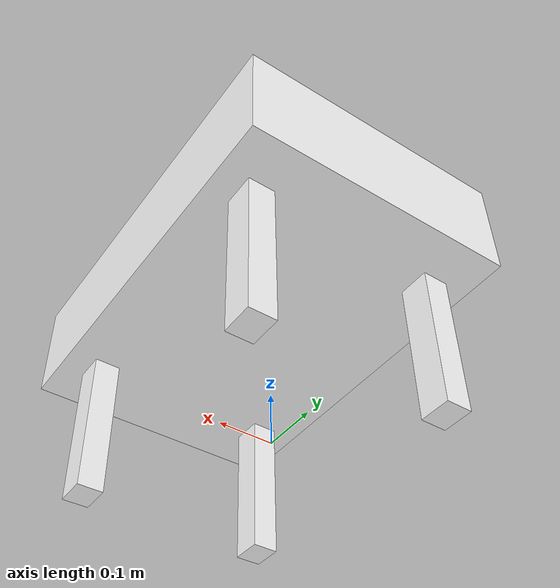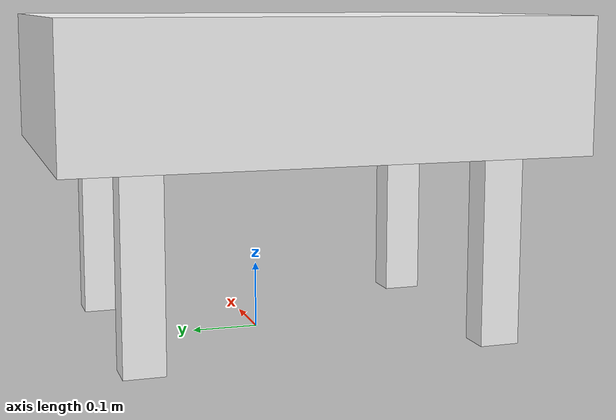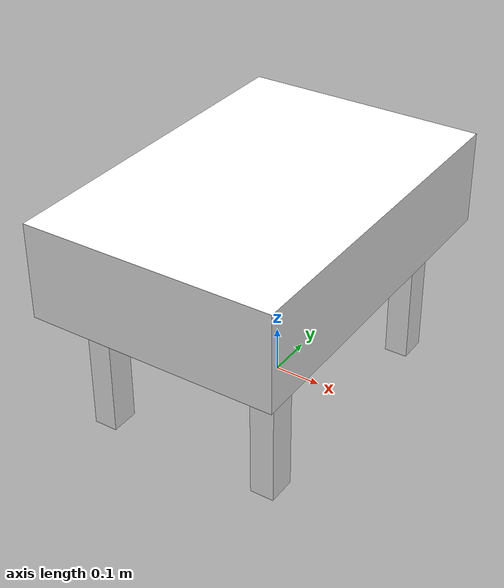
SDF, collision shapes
<?xml version="1.0" ?>
<sdf version="1.5">
  <model name="table_marble">
    <static>true</static>
    <pose>0 0 0.324 0 0 0</pose>
    <link name="link">
      <!-- tabletop + apron: world z 0.28..0.48, far above the robot -->
      <collision name="collision_top">
        <pose>0 -0.05 0.06 0 0 0</pose>
        <geometry><box><size>0.52 0.76 0.20</size></box></geometry>
      </collision>
      <!-- four legs, measured from the mesh: local x +/-0.185, y -0.315 / +0.215,
           floor to apron -->
      <collision name="collision_leg_1">
        <pose>0.185 -0.315 -0.182 0 0 0</pose>
        <geometry><box><size>0.05 0.06 0.284</size></box></geometry>
      </collision>
      <collision name="collision_leg_2">
        <pose>-0.185 -0.315 -0.182 0 0 0</pose>
        <geometry><box><size>0.05 0.06 0.284</size></box></geometry>
      </collision>
      <collision name="collision_leg_3">
        <pose>0.185 0.215 -0.182 0 0 0</pose>
        <geometry><box><size>0.05 0.06 0.284</size></box></geometry>
      </collision>
      <collision name="collision_leg_4">
        <pose>-0.185 0.215 -0.182 0 0 0</pose>
        <geometry><box><size>0.05 0.06 0.284</size></box></geometry>
      </collision>
      <visual name="visual">
        <geometry>
          <mesh>
            <uri>meshes/table_lightmap.dae</uri>
            <scale>0.05 0.1 0.125</scale>
          </mesh>
        </geometry>
        <material>
          <pbr>
            <metal>
              <albedo_map>textures/marble.png</albedo_map>
            </metal>
          </pbr>
          <ambient>1 1 1 1</ambient>
          <diffuse>1 1 1 1</diffuse>
          <specular>1 1 1 1</specular>
          <emissive>0 0 0 1</emissive>
        </material>
      </visual>
    </link>
  </model>
</sdf>
